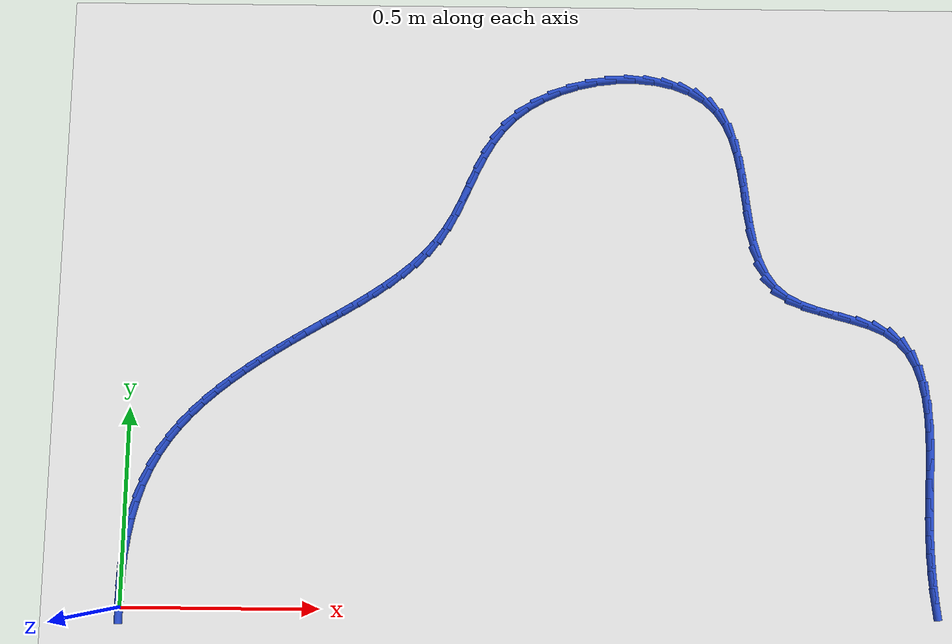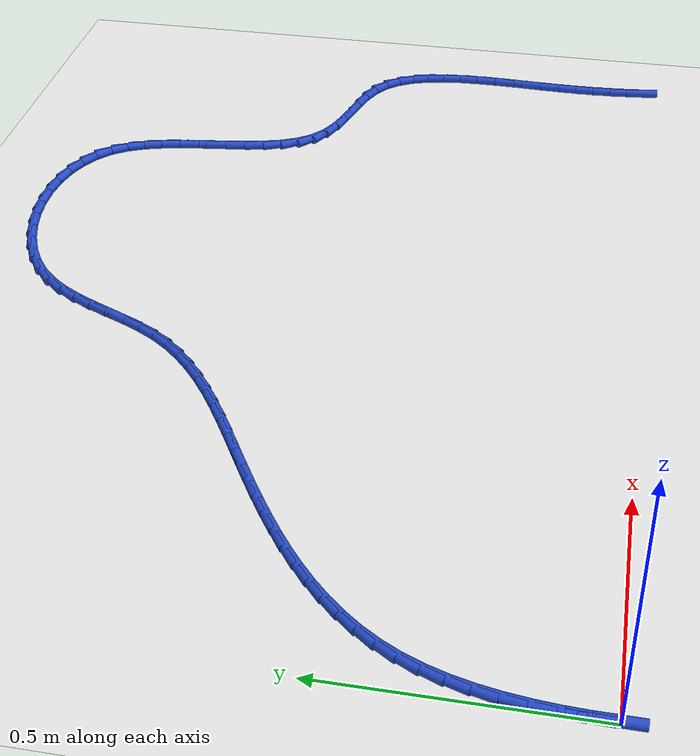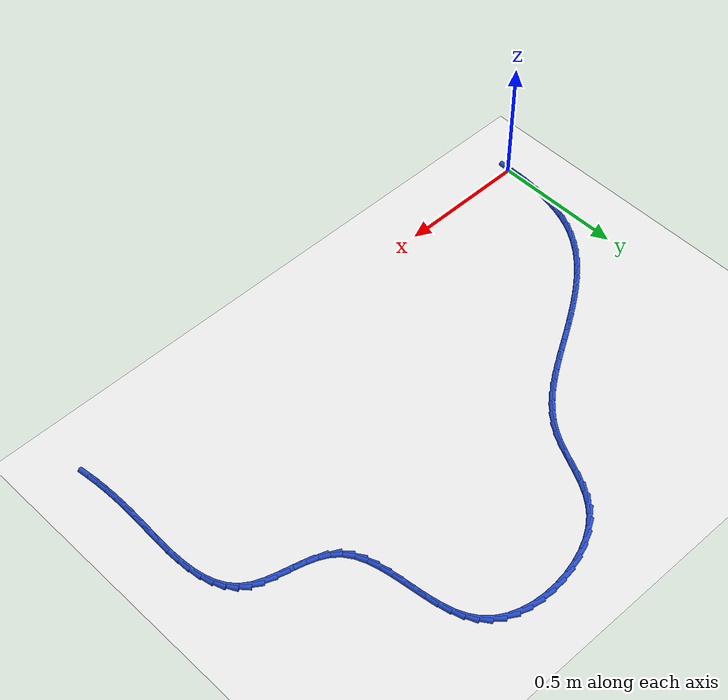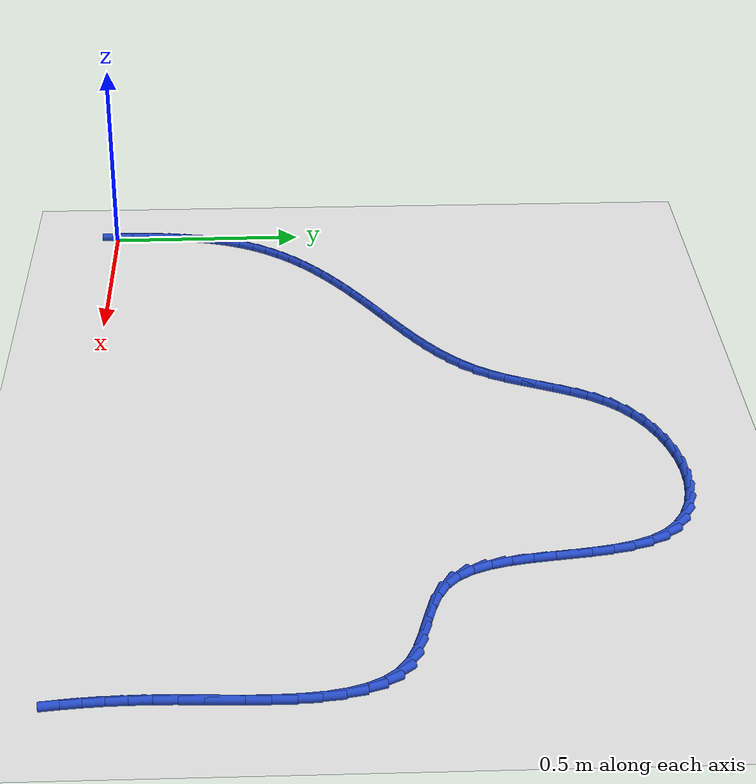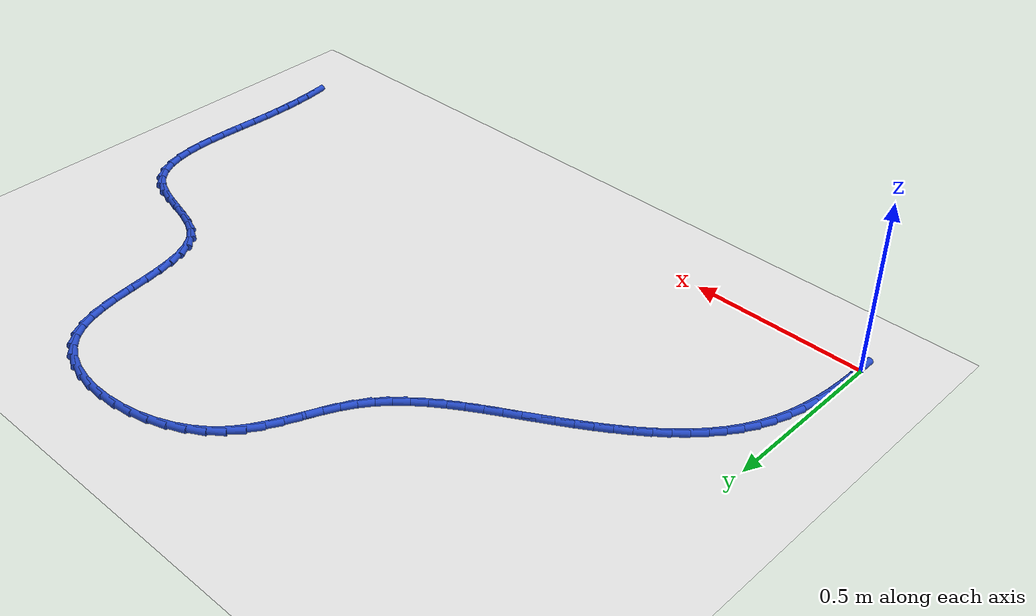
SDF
<sdf version="1.6">
 <world name="default">
  <model name="ground_plane">
   <static>1</static>
   <link name="link">
    <collision name="collision">
     <geometry><plane><normal>0 0 1</normal><size>100 100</size></plane></geometry>
     <surface><friction><ode><mu>100</mu><mu2>50</mu2></ode></friction></surface>
    </collision>
    <visual name="visual">
     <cast_shadows>0</cast_shadows>
     <geometry><plane><normal>0 0 1</normal><size>100 100</size></plane></geometry>
     <material>
      <script><uri>file://media/materials/scripts/gazebo.material</uri><name>Gazebo/WhiteGlow</name></script>
     </material>
    </visual>
   </link>
  </model>
  <model name="line">
   <link name="link_0">
    <pose>-9.540979117872439e-18 -9.71445146547012e-17 0.01 0 1.57 1.5653030758352668</pose>
    <collision name="collision">
     <geometry><cylinder><radius>0.01</radius><length>0.08</length></cylinder></geometry>
    </collision>
    <visual name="visual">
     <material>
      <script><name>Gazebo/Blue</name><uri>file://media/materials/scripts/gazebo.material</uri></script>
     </material>
     <geometry><cylinder><radius>0.01</radius><length>0.08</length></cylinder></geometry>
    </visual>
   </link>
   <link name="link_1">
    <pose>0.00025050211197734276 0.04560133773464336 0.01 0 1.57 1.5297810279426987</pose>
    <collision name="collision">
     <geometry><cylinder><radius>0.01</radius><length>0.08</length></cylinder></geometry>
    </collision>
    <visual name="visual">
     <material>
      <script><name>Gazebo/Blue</name><uri>file://media/materials/scripts/gazebo.material</uri></script>
     </material>
     <geometry><cylinder><radius>0.01</radius><length>0.08</length></cylinder></geometry>
    </visual>
   </link>
   <link name="link_2">
    <pose>0.002117362007868992 0.0910919957585255 0.01 0 1.57 1.488524370906503</pose>
    <collision name="collision">
     <geometry><cylinder><radius>0.01</radius><length>0.08</length></cylinder></geometry>
    </collision>
    <visual name="visual">
     <material>
      <script><name>Gazebo/Blue</name><uri>file://media/materials/scripts/gazebo.material</uri></script>
     </material>
     <geometry><cylinder><radius>0.01</radius><length>0.08</length></cylinder></geometry>
    </visual>
   </link>
   <link name="link_3">
    <pose>0.005837761680537417 0.13621067300344877 0.01 0 1.57 1.4409019700494763</pose>
    <collision name="collision">
     <geometry><cylinder><radius>0.01</radius><length>0.08</length></cylinder></geometry>
    </collision>
    <visual name="visual">
     <material>
      <script><name>Gazebo/Blue</name><uri>file://media/materials/scripts/gazebo.material</uri></script>
     </material>
     <geometry><cylinder><radius>0.01</radius><length>0.08</length></cylinder></geometry>
    </visual>
   </link>
   <link name="link_4">
    <pose>0.011648883122845082 0.18069606840121544 0.01 0 1.57 1.3862075633671531</pose>
    <collision name="collision">
     <geometry><cylinder><radius>0.01</radius><length>0.08</length></cylinder></geometry>
    </collision>
    <visual name="visual">
     <material>
      <script><name>Gazebo/Blue</name><uri>file://media/materials/scripts/gazebo.material</uri></script>
     </material>
     <geometry><cylinder><radius>0.01</radius><length>0.08</length></cylinder></geometry>
    </visual>
   </link>
   <link name="link_5">
    <pose>0.019787908327654473 0.22428688088362814 0.01 0 1.57 1.3237033503994662</pose>
    <collision name="collision">
     <geometry><cylinder><radius>0.01</radius><length>0.08</length></cylinder></geometry>
    </collision>
    <visual name="visual">
     <material>
      <script><name>Gazebo/Blue</name><uri>file://media/materials/scripts/gazebo.material</uri></script>
     </material>
     <geometry><cylinder><radius>0.01</radius><length>0.08</length></cylinder></geometry>
    </visual>
   </link>
   <link name="link_6">
    <pose>0.03049201928782805 0.26672180938248913 0.01 0 1.57 1.252696962597922</pose>
    <collision name="collision">
     <geometry><cylinder><radius>0.01</radius><length>0.08</length></cylinder></geometry>
    </collision>
    <visual name="visual">
     <material>
      <script><name>Gazebo/Blue</name><uri>file://media/materials/scripts/gazebo.material</uri></script>
     </material>
     <geometry><cylinder><radius>0.01</radius><length>0.08</length></cylinder></geometry>
    </visual>
   </link>
   <link name="link_7">
    <pose>0.043998397996228275 0.3077395528296009 0.01 0 1.57 1.1726640984225434</pose>
    <collision name="collision">
     <geometry><cylinder><radius>0.01</radius><length>0.08</length></cylinder></geometry>
    </collision>
    <visual name="visual">
     <material>
      <script><name>Gazebo/Blue</name><uri>file://media/materials/scripts/gazebo.material</uri></script>
     </material>
     <geometry><cylinder><radius>0.01</radius><length>0.08</length></cylinder></geometry>
    </visual>
   </link>
   <link name="link_8">
    <pose>0.060544226445717664 0.347078810156766 0.01 0 1.57 1.0840473184928858</pose>
    <collision name="collision">
     <geometry><cylinder><radius>0.01</radius><length>0.08</length></cylinder></geometry>
    </collision>
    <visual name="visual">
     <material>
      <script><name>Gazebo/Blue</name><uri>file://media/materials/scripts/gazebo.material</uri></script>
     </material>
     <geometry><cylinder><radius>0.01</radius><length>0.08</length></cylinder></geometry>
    </visual>
   </link>
   <link name="link_9">
    <pose>0.0803456091846087 0.38449501368439337 0.01 0 1.57 0.9957664719455297</pose>
    <collision name="collision">
     <geometry><cylinder><radius>0.01</radius><length>0.08</length></cylinder></geometry>
    </collision>
    <visual name="visual">
     <material>
      <script><name>Gazebo/Blue</name><uri>file://media/materials/scripts/gazebo.material</uri></script>
     </material>
     <geometry><cylinder><radius>0.01</radius><length>0.08</length></cylinder></geometry>
    </visual>
   </link>
   <link name="link_10">
    <pose>0.10333548296893096 0.4199684027154446 0.01 0 1.57 0.9149621484737105</pose>
    <collision name="collision">
     <geometry><cylinder><radius>0.01</radius><length>0.08</length></cylinder></geometry>
    </collision>
    <visual name="visual">
     <material>
      <script><name>Gazebo/Blue</name><uri>file://media/materials/scripts/gazebo.material</uri></script>
     </material>
     <geometry><cylinder><radius>0.01</radius><length>0.08</length></cylinder></geometry>
    </visual>
   </link>
   <link name="link_11">
    <pose>0.1292441848096846 0.4536400605421592 0.01 0 1.57 0.842478964433634</pose>
    <collision name="collision">
     <geometry><cylinder><radius>0.01</radius><length>0.08</length></cylinder></geometry>
    </collision>
    <visual name="visual">
     <material>
      <script><name>Gazebo/Blue</name><uri>file://media/materials/scripts/gazebo.material</uri></script>
     </material>
     <geometry><cylinder><radius>0.01</radius><length>0.08</length></cylinder></geometry>
    </visual>
   </link>
   <link name="link_12">
    <pose>0.15779765624762143 0.48565456002172885 0.01 0 1.57 0.7785238549478946</pose>
    <collision name="collision">
     <geometry><cylinder><radius>0.01</radius><length>0.08</length></cylinder></geometry>
    </collision>
    <visual name="visual">
     <material>
      <script><name>Gazebo/Blue</name><uri>file://media/materials/scripts/gazebo.material</uri></script>
     </material>
     <geometry><cylinder><radius>0.01</radius><length>0.08</length></cylinder></geometry>
    </visual>
   </link>
   <link name="link_13">
    <pose>0.18872183882349308 0.5161564740113451 0.01 0 1.57 0.7229430882734792</pose>
    <collision name="collision">
     <geometry><cylinder><radius>0.01</radius><length>0.08</length></cylinder></geometry>
    </collision>
    <visual name="visual">
     <material>
      <script><name>Gazebo/Blue</name><uri>file://media/materials/scripts/gazebo.material</uri></script>
     </material>
     <geometry><cylinder><radius>0.01</radius><length>0.08</length></cylinder></geometry>
    </visual>
   </link>
   <link name="link_14">
    <pose>0.22174267407805115 0.5452903753681995 0.01 0 1.57 0.6753656907574038</pose>
    <collision name="collision">
     <geometry><cylinder><radius>0.01</radius><length>0.08</length></cylinder></geometry>
    </collision>
    <visual name="visual">
     <material>
      <script><name>Gazebo/Blue</name><uri>file://media/materials/scripts/gazebo.material</uri></script>
     </material>
     <geometry><cylinder><radius>0.01</radius><length>0.08</length></cylinder></geometry>
    </visual>
   </link>
   <link name="link_15">
    <pose>0.25658610355204736 0.5732008369494833 0.01 0 1.57 0.6353198553763588</pose>
    <collision name="collision">
     <geometry><cylinder><radius>0.01</radius><length>0.08</length></cylinder></geometry>
    </collision>
    <visual name="visual">
     <material>
      <script><name>Gazebo/Blue</name><uri>file://media/materials/scripts/gazebo.material</uri></script>
     </material>
     <geometry><cylinder><radius>0.01</radius><length>0.08</length></cylinder></geometry>
    </visual>
   </link>
   <link name="link_16">
    <pose>0.2929780687862335 0.6000324316123885 0.01 0 1.57 0.6023165751661791</pose>
    <collision name="collision">
     <geometry><cylinder><radius>0.01</radius><length>0.08</length></cylinder></geometry>
    </collision>
    <visual name="visual">
     <material>
      <script><name>Gazebo/Blue</name><uri>file://media/materials/scripts/gazebo.material</uri></script>
     </material>
     <geometry><cylinder><radius>0.01</radius><length>0.08</length></cylinder></geometry>
    </visual>
   </link>
   <link name="link_17">
    <pose>0.3306445113213612 0.6259297322141066 0.01 0 1.57 0.5759045530681607</pose>
    <collision name="collision">
     <geometry><cylinder><radius>0.01</radius><length>0.08</length></cylinder></geometry>
    </collision>
    <visual name="visual">
     <material>
      <script><name>Gazebo/Blue</name><uri>file://media/materials/scripts/gazebo.material</uri></script>
     </material>
     <geometry><cylinder><radius>0.01</radius><length>0.08</length></cylinder></geometry>
    </visual>
   </link>
   <link name="link_18">
    <pose>0.36931137269818193 0.651037311611829 0.01 0 1.57 0.5557038212532415</pose>
    <collision name="collision">
     <geometry><cylinder><radius>0.01</radius><length>0.08</length></cylinder></geometry>
    </collision>
    <visual name="visual">
     <material>
      <script><name>Gazebo/Blue</name><uri>file://media/materials/scripts/gazebo.material</uri></script>
     </material>
     <geometry><cylinder><radius>0.01</radius><length>0.08</length></cylinder></geometry>
    </visual>
   </link>
   <link name="link_19">
    <pose>0.4087045944574477 0.6754997426627473 0.01 0 1.57 0.5414253778234269</pose>
    <collision name="collision">
     <geometry><cylinder><radius>0.01</radius><length>0.08</length></cylinder></geometry>
    </collision>
    <visual name="visual">
     <material>
      <script><name>Gazebo/Blue</name><uri>file://media/materials/scripts/gazebo.material</uri></script>
     </material>
     <geometry><cylinder><radius>0.01</radius><length>0.08</length></cylinder></geometry>
    </visual>
   </link>
   <link name="link_20">
    <pose>0.4485501181399101 0.6994615982240531 0.01 0 1.57 0.5329689783708867</pose>
    <collision name="collision">
     <geometry><cylinder><radius>0.01</radius><length>0.08</length></cylinder></geometry>
    </collision>
    <visual name="visual">
     <material>
      <script><name>Gazebo/Blue</name><uri>file://media/materials/scripts/gazebo.material</uri></script>
     </material>
     <geometry><cylinder><radius>0.01</radius><length>0.08</length></cylinder></geometry>
    </visual>
   </link>
   <link name="link_21">
    <pose>0.4885719016272206 0.7230709365363737 0.01 0 1.57 0.5323891850747435</pose>
    <collision name="collision">
     <geometry><cylinder><radius>0.01</radius><length>0.08</length></cylinder></geometry>
    </collision>
    <visual name="visual">
     <material>
      <script><name>Gazebo/Blue</name><uri>file://media/materials/scripts/gazebo.material</uri></script>
     </material>
     <geometry><cylinder><radius>0.01</radius><length>0.08</length></cylinder></geometry>
    </visual>
   </link>
   <link name="link_22">
    <pose>0.5284451403309848 0.7465614938206808 0.01 0 1.57 0.5420022314829092</pose>
    <collision name="collision">
     <geometry><cylinder><radius>0.01</radius><length>0.08</length></cylinder></geometry>
    </collision>
    <visual name="visual">
     <material>
      <script><name>Gazebo/Blue</name><uri>file://media/materials/scripts/gazebo.material</uri></script>
     </material>
     <geometry><cylinder><radius>0.01</radius><length>0.08</length></cylinder></geometry>
    </visual>
   </link>
   <link name="link_23">
    <pose>0.5677944572105186 0.7702558645032243 0.01 0 1.57 0.5622401183788936</pose>
    <collision name="collision">
     <geometry><cylinder><radius>0.01</radius><length>0.08</length></cylinder></geometry>
    </collision>
    <visual name="visual">
     <material>
      <script><name>Gazebo/Blue</name><uri>file://media/materials/scripts/gazebo.material</uri></script>
     </material>
     <geometry><cylinder><radius>0.01</radius><length>0.08</length></cylinder></geometry>
    </visual>
   </link>
   <link name="link_24">
    <pose>0.6062421294188469 0.7944807647035385 0.01 0 1.57 0.5936302586315509</pose>
    <collision name="collision">
     <geometry><cylinder><radius>0.01</radius><length>0.08</length></cylinder></geometry>
    </collision>
    <visual name="visual">
     <material>
      <script><name>Gazebo/Blue</name><uri>file://media/materials/scripts/gazebo.material</uri></script>
     </material>
     <geometry><cylinder><radius>0.01</radius><length>0.08</length></cylinder></geometry>
    </visual>
   </link>
   <link name="link_25">
    <pose>0.6434104341089945 0.8195629105411578 0.01 0 1.57 0.6368484654022575</pose>
    <collision name="collision">
     <geometry><cylinder><radius>0.01</radius><length>0.08</length></cylinder></geometry>
    </collision>
    <visual name="visual">
     <material>
      <script><name>Gazebo/Blue</name><uri>file://media/materials/scripts/gazebo.material</uri></script>
     </material>
     <geometry><cylinder><radius>0.01</radius><length>0.08</length></cylinder></geometry>
    </visual>
   </link>
   <link name="link_26">
    <pose>0.6789216484339855 0.8458290181356166 0.01 0 1.57 0.6926152212125446</pose>
    <collision name="collision">
     <geometry><cylinder><radius>0.01</radius><length>0.08</length></cylinder></geometry>
    </collision>
    <visual name="visual">
     <material>
      <script><name>Gazebo/Blue</name><uri>file://media/materials/scripts/gazebo.material</uri></script>
     </material>
     <geometry><cylinder><radius>0.01</radius><length>0.08</length></cylinder></geometry>
    </visual>
   </link>
   <link name="link_27">
    <pose>0.7123980495468446 0.8736058036064485 0.01 0 1.57 0.7615112720891524</pose>
    <collision name="collision">
     <geometry><cylinder><radius>0.01</radius><length>0.08</length></cylinder></geometry>
    </collision>
    <visual name="visual">
     <material>
      <script><name>Gazebo/Blue</name><uri>file://media/materials/scripts/gazebo.material</uri></script>
     </material>
     <geometry><cylinder><radius>0.01</radius><length>0.08</length></cylinder></geometry>
    </visual>
   </link>
   <link name="link_28">
    <pose>0.7434619146005969 0.9032199830731887 0.01 0 1.57 0.8436929520012761</pose>
    <collision name="collision">
     <geometry><cylinder><radius>0.01</radius><length>0.08</length></cylinder></geometry>
    </collision>
    <visual name="visual">
     <material>
      <script><name>Gazebo/Blue</name><uri>file://media/materials/scripts/gazebo.material</uri></script>
     </material>
     <geometry><cylinder><radius>0.01</radius><length>0.08</length></cylinder></geometry>
    </visual>
   </link>
   <link name="link_29">
    <pose>0.7717355207482667 0.9349982726553712 0.01 0 1.57 0.9385232051621704</pose>
    <collision name="collision">
     <geometry><cylinder><radius>0.01</radius><length>0.08</length></cylinder></geometry>
    </collision>
    <visual name="visual">
     <material>
      <script><name>Gazebo/Blue</name><uri>file://media/materials/scripts/gazebo.material</uri></script>
     </material>
     <geometry><cylinder><radius>0.01</radius><length>0.08</length></cylinder></geometry>
    </visual>
   </link>
   <link name="link_30">
    <pose>0.796841145142879 0.9692673884725302 0.01 0 1.57 1.0390859069789522</pose>
    <collision name="collision">
     <geometry><cylinder><radius>0.01</radius><length>0.08</length></cylinder></geometry>
    </collision>
    <visual name="visual">
     <material>
      <script><name>Gazebo/Blue</name><uri>file://media/materials/scripts/gazebo.material</uri></script>
     </material>
     <geometry><cylinder><radius>0.01</radius><length>0.08</length></cylinder></geometry>
    </visual>
   </link>
   <link name="link_31">
    <pose>0.8185788586474677 1.0062226554808555 0.01 0 1.57 1.1127757626558452</pose>
    <collision name="collision">
     <geometry><cylinder><radius>0.01</radius><length>0.08</length></cylinder></geometry>
    </collision>
    <visual name="visual">
     <material>
      <script><name>Gazebo/Blue</name><uri>file://media/materials/scripts/gazebo.material</uri></script>
     </material>
     <geometry><cylinder><radius>0.01</radius><length>0.08</length></cylinder></geometry>
    </visual>
   </link>
   <link name="link_32">
    <pose>0.8378255149094231 1.0452636463981777 0.01 0 1.57 1.149328500024085</pose>
    <collision name="collision">
     <geometry><cylinder><radius>0.01</radius><length>0.08</length></cylinder></geometry>
    </collision>
    <visual name="visual">
     <material>
      <script><name>Gazebo/Blue</name><uri>file://media/materials/scripts/gazebo.material</uri></script>
     </material>
     <geometry><cylinder><radius>0.01</radius><length>0.08</length></cylinder></geometry>
    </visual>
   </link>
   <link name="link_33">
    <pose>0.8558612282223872 1.085491920669309 0.01 0 1.57 1.1505495541237387</pose>
    <collision name="collision">
     <geometry><cylinder><radius>0.01</radius><length>0.08</length></cylinder></geometry>
    </collision>
    <visual name="visual">
     <material>
      <script><name>Gazebo/Blue</name><uri>file://media/materials/scripts/gazebo.material</uri></script>
     </material>
     <geometry><cylinder><radius>0.01</radius><length>0.08</length></cylinder></geometry>
    </visual>
   </link>
   <link name="link_34">
    <pose>0.8739668204923616 1.1260085148071128 0.01 0 1.57 1.1171552571898333</pose>
    <collision name="collision">
     <geometry><cylinder><radius>0.01</radius><length>0.08</length></cylinder></geometry>
    </collision>
    <visual name="visual">
     <material>
      <script><name>Gazebo/Blue</name><uri>file://media/materials/scripts/gazebo.material</uri></script>
     </material>
     <geometry><cylinder><radius>0.01</radius><length>0.08</length></cylinder></geometry>
    </visual>
   </link>
   <link name="link_35">
    <pose>0.893423113625348 1.1659144653244524 0.01 0 1.57 1.0487679363123783</pose>
    <collision name="collision">
     <geometry><cylinder><radius>0.01</radius><length>0.08</length></cylinder></geometry>
    </collision>
    <visual name="visual">
     <material>
      <script><name>Gazebo/Blue</name><uri>file://media/materials/scripts/gazebo.material</uri></script>
     </material>
     <geometry><cylinder><radius>0.01</radius><length>0.08</length></cylinder></geometry>
    </visual>
   </link>
   <link name="link_36">
    <pose>0.915510929527348 1.2043108087341912 0.01 0 1.57 0.9451471084817058</pose>
    <collision name="collision">
     <geometry><cylinder><radius>0.01</radius><length>0.08</length></cylinder></geometry>
    </collision>
    <visual name="visual">
     <material>
      <script><name>Gazebo/Blue</name><uri>file://media/materials/scripts/gazebo.material</uri></script>
     </material>
     <geometry><cylinder><radius>0.01</radius><length>0.08</length></cylinder></geometry>
    </visual>
   </link>
   <link name="link_37">
    <pose>0.9415110901043641 1.2402985815491934 0.01 0 1.57 0.8087013914473506</pose>
    <collision name="collision">
     <geometry><cylinder><radius>0.01</radius><length>0.08</length></cylinder></geometry>
    </collision>
    <visual name="visual">
     <material>
      <script><name>Gazebo/Blue</name><uri>file://media/materials/scripts/gazebo.material</uri></script>
     </material>
     <geometry><cylinder><radius>0.01</radius><length>0.08</length></cylinder></geometry>
    </visual>
   </link>
   <link name="link_38">
    <pose>0.9727030356850674 1.272979234341757 0.01 0 1.57 0.6582202324102502</pose>
    <collision name="collision">
     <geometry><cylinder><radius>0.01</radius><length>0.08</length></cylinder></geometry>
    </collision>
    <visual name="visual">
     <material>
      <script><name>Gazebo/Blue</name><uri>file://media/materials/scripts/gazebo.material</uri></script>
     </material>
     <geometry><cylinder><radius>0.01</radius><length>0.08</length></cylinder></geometry>
    </visual>
   </link>
   <link name="link_39">
    <pose>1.009761961641977 1.3016353102078462 0.01 0 1.57 0.5253563533869497</pose>
    <collision name="collision">
     <geometry><cylinder><radius>0.01</radius><length>0.08</length></cylinder></geometry>
    </collision>
    <visual name="visual">
     <material>
      <script><name>Gazebo/Blue</name><uri>file://media/materials/scripts/gazebo.material</uri></script>
     </material>
     <geometry><cylinder><radius>0.01</radius><length>0.08</length></cylinder></geometry>
    </visual>
   </link>
   <link name="link_40">
    <pose>1.0518150176792507 1.326013302325221 0.01 0 1.57 0.40921367634495115</pose>
    <collision name="collision">
     <geometry><cylinder><radius>0.01</radius><length>0.08</length></cylinder></geometry>
    </collision>
    <visual name="visual">
     <material>
      <script><name>Gazebo/Blue</name><uri>file://media/materials/scripts/gazebo.material</uri></script>
     </material>
     <geometry><cylinder><radius>0.01</radius><length>0.08</length></cylinder></geometry>
    </visual>
   </link>
   <link name="link_41">
    <pose>1.097744937931272 1.3459329553434192 0.01 0 1.57 0.30411154297586623</pose>
    <collision name="collision">
     <geometry><cylinder><radius>0.01</radius><length>0.08</length></cylinder></geometry>
    </collision>
    <visual name="visual">
     <material>
      <script><name>Gazebo/Blue</name><uri>file://media/materials/scripts/gazebo.material</uri></script>
     </material>
     <geometry><cylinder><radius>0.01</radius><length>0.08</length></cylinder></geometry>
    </visual>
   </link>
   <link name="link_42">
    <pose>1.1464344565324258 1.3612140139119795 0.01 0 1.57 0.20494608667161407</pose>
    <collision name="collision">
     <geometry><cylinder><radius>0.01</radius><length>0.08</length></cylinder></geometry>
    </collision>
    <visual name="visual">
     <material>
      <script><name>Gazebo/Blue</name><uri>file://media/materials/scripts/gazebo.material</uri></script>
     </material>
     <geometry><cylinder><radius>0.01</radius><length>0.08</length></cylinder></geometry>
    </visual>
   </link>
   <link name="link_43">
    <pose>1.1967663076170973 1.3716762226804409 0.01 0 1.57 0.10701070240283597</pose>
    <collision name="collision">
     <geometry><cylinder><radius>0.01</radius><length>0.08</length></cylinder></geometry>
    </collision>
    <visual name="visual">
     <material>
      <script><name>Gazebo/Blue</name><uri>file://media/materials/scripts/gazebo.material</uri></script>
     </material>
     <geometry><cylinder><radius>0.01</radius><length>0.08</length></cylinder></geometry>
    </visual>
   </link>
   <link name="link_44">
    <pose>1.2476232253196702 1.3771393262983418 0.01 0 1.57 0.005644915793065453</pose>
    <collision name="collision">
     <geometry><cylinder><radius>0.01</radius><length>0.08</length></cylinder></geometry>
    </collision>
    <visual name="visual">
     <material>
      <script><name>Gazebo/Blue</name><uri>file://media/materials/scripts/gazebo.material</uri></script>
     </material>
     <geometry><cylinder><radius>0.01</radius><length>0.08</length></cylinder></geometry>
    </visual>
   </link>
   <link name="link_45">
    <pose>1.2978879437745303 1.3774230694152199 0.01 0 1.57 -0.10415974832302113</pose>
    <collision name="collision">
     <geometry><cylinder><radius>0.01</radius><length>0.08</length></cylinder></geometry>
    </collision>
    <visual name="visual">
     <material>
      <script><name>Gazebo/Blue</name><uri>file://media/materials/scripts/gazebo.material</uri></script>
     </material>
     <geometry><cylinder><radius>0.01</radius><length>0.08</length></cylinder></geometry>
    </visual>
   </link>
   <link name="link_46">
    <pose>1.346443197116061 1.372347196680615 0.01 0 1.57 -0.22810665589423143</pose>
    <collision name="collision">
     <geometry><cylinder><radius>0.01</radius><length>0.08</length></cylinder></geometry>
    </collision>
    <visual name="visual">
     <material>
      <script><name>Gazebo/Blue</name><uri>file://media/materials/scripts/gazebo.material</uri></script>
     </material>
     <geometry><cylinder><radius>0.01</radius><length>0.08</length></cylinder></geometry>
    </visual>
   </link>
   <link name="link_47">
    <pose>1.3921717194786483 1.3617314527440645 0.01 0 1.57 -0.3726847541728337</pose>
    <collision name="collision">
     <geometry><cylinder><radius>0.01</radius><length>0.08</length></cylinder></geometry>
    </collision>
    <visual name="visual">
     <material>
      <script><name>Gazebo/Blue</name><uri>file://media/materials/scripts/gazebo.material</uri></script>
     </material>
     <geometry><cylinder><radius>0.01</radius><length>0.08</length></cylinder></geometry>
    </visual>
   </link>
   <link name="link_48">
    <pose>1.433956244996675 1.3453955822551076 0.01 0 1.57 -0.5444601184396616</pose>
    <collision name="collision">
     <geometry><cylinder><radius>0.01</radius><length>0.08</length></cylinder></geometry>
    </collision>
    <visual name="visual">
     <material>
      <script><name>Gazebo/Blue</name><uri>file://media/materials/scripts/gazebo.material</uri></script>
     </material>
     <geometry><cylinder><radius>0.01</radius><length>0.08</length></cylinder></geometry>
    </visual>
   </link>
   <link name="link_49">
    <pose>1.4706795078045267 1.3231593298632822 0.01 0 1.57 -0.747567374307094</pose>
    <collision name="collision">
     <geometry><cylinder><radius>0.01</radius><length>0.08</length></cylinder></geometry>
    </collision>
    <visual name="visual">
     <material>
      <script><name>Gazebo/Blue</name><uri>file://media/materials/scripts/gazebo.material</uri></script>
     </material>
     <geometry><cylinder><radius>0.01</radius><length>0.08</length></cylinder></geometry>
    </visual>
   </link>
   <link name="link_50">
    <pose>1.5012242420365887 1.2948424402181278 0.01 0 1.57 -0.9692586021782646</pose>
    <collision name="collision">
     <geometry><cylinder><radius>0.01</radius><length>0.08</length></cylinder></geometry>
    </collision>
    <visual name="visual">
     <material>
      <script><name>Gazebo/Blue</name><uri>file://media/materials/scripts/gazebo.material</uri></script>
     </material>
     <geometry><cylinder><radius>0.01</radius><length>0.08</length></cylinder></geometry>
    </visual>
   </link>
   <link name="link_51">
    <pose>1.5248244346616455 1.2604597065780323 0.01 0 1.57 -1.1536797629218414</pose>
    <collision name="collision">
     <geometry><cylinder><radius>0.01</radius><length>0.08</length></cylinder></geometry>
    </collision>
    <visual name="visual">
     <material>
      <script><name>Gazebo/Blue</name><uri>file://media/materials/scripts/gazebo.material</uri></script>
     </material>
     <geometry><cylinder><radius>0.01</radius><length>0.08</length></cylinder></geometry>
    </visual>
   </link>
   <link name="link_52">
    <pose>1.5423410558418746 1.2209293762874835 0.01 0 1.57 -1.2853555912811894</pose>
    <collision name="collision">
     <geometry><cylinder><radius>0.01</radius><length>0.08</length></cylinder></geometry>
    </collision>
    <visual name="visual">
     <material>
      <script><name>Gazebo/Blue</name><uri>file://media/materials/scripts/gazebo.material</uri></script>
     </material>
     <geometry><cylinder><radius>0.01</radius><length>0.08</length></cylinder></geometry>
    </visual>
   </link>
   <link name="link_53">
    <pose>1.5551058110404197 1.1774310932025356 0.01 0 1.57 -1.371587288108067</pose>
    <collision name="collision">
     <geometry><cylinder><radius>0.01</radius><length>0.08</length></cylinder></geometry>
    </collision>
    <visual name="visual">
     <material>
      <script><name>Gazebo/Blue</name><uri>file://media/materials/scripts/gazebo.material</uri></script>
     </material>
     <geometry><cylinder><radius>0.01</radius><length>0.08</length></cylinder></geometry>
    </visual>
   </link>
   <link name="link_54">
    <pose>1.5644504532334635 1.1311445275629504 0.01 0 1.57 -1.4204363894564953</pose>
    <collision name="collision">
     <geometry><cylinder><radius>0.01</radius><length>0.08</length></cylinder></geometry>
    </collision>
    <visual name="visual">
     <material>
      <script><name>Gazebo/Blue</name><uri>file://media/materials/scripts/gazebo.material</uri></script>
     </material>
     <geometry><cylinder><radius>0.01</radius><length>0.08</length></cylinder></geometry>
    </visual>
   </link>
   <link name="link_55">
    <pose>1.571706735397192 1.0832493496084903 0.01 0 1.57 -1.4370970362415991</pose>
    <collision name="collision">
     <geometry><cylinder><radius>0.01</radius><length>0.08</length></cylinder></geometry>
    </collision>
    <visual name="visual">
     <material>
      <script><name>Gazebo/Blue</name><uri>file://media/materials/scripts/gazebo.material</uri></script>
     </material>
     <geometry><cylinder><radius>0.01</radius><length>0.08</length></cylinder></geometry>
    </visual>
   </link>
   <link name="link_56">
    <pose>1.5782064105077882 1.0349252295789189 0.01 0 1.57 -1.4231644895617552</pose>
    <collision name="collision">
     <geometry><cylinder><radius>0.01</radius><length>0.08</length></cylinder></geometry>
    </collision>
    <visual name="visual">
     <material>
      <script><name>Gazebo/Blue</name><uri>file://media/materials/scripts/gazebo.material</uri></script>
     </material>
     <geometry><cylinder><radius>0.01</radius><length>0.08</length></cylinder></geometry>
    </visual>
   </link>
   <link name="link_57">
    <pose>1.5852812315414362 0.9873518377139976 0.01 0 1.57 -1.37649689555462</pose>
    <collision name="collision">
     <geometry><cylinder><radius>0.01</radius><length>0.08</length></cylinder></geometry>
    </collision>
    <visual name="visual">
     <material>
      <script><name>Gazebo/Blue</name><uri>file://media/materials/scripts/gazebo.material</uri></script>
     </material>
     <geometry><cylinder><radius>0.01</radius><length>0.08</length></cylinder></geometry>
    </visual>
   </link>
   <link name="link_58">
    <pose>1.5942629514743198 0.9417088442534889 0.01 0 1.57 -1.2910168562740298</pose>
    <collision name="collision">
     <geometry><cylinder><radius>0.01</radius><length>0.08</length></cylinder></geometry>
    </collision>
    <visual name="visual">
     <material>
      <script><name>Gazebo/Blue</name><uri>file://media/materials/scripts/gazebo.material</uri></script>
     </material>
     <geometry><cylinder><radius>0.01</radius><length>0.08</length></cylinder></geometry>
    </visual>
   </link>
   <link name="link_59">
    <pose>1.606483323282623 0.8991759194371558 0.01 0 1.57 -1.1570833213207852</pose>
    <collision name="collision">
     <geometry><cylinder><radius>0.01</radius><length>0.08</length></cylinder></geometry>
    </collision>
    <visual name="visual">
     <material>
      <script><name>Gazebo/Blue</name><uri>file://media/materials/scripts/gazebo.material</uri></script>
     </material>
     <geometry><cylinder><radius>0.01</radius><length>0.08</length></cylinder></geometry>
    </visual>
   </link>
   <link name="link_60">
    <pose>1.6232740999425301 0.8609327335047606 0.01 0 1.57 -0.9651816054771756</pose>
    <collision name="collision">
     <geometry><cylinder><radius>0.01</radius><length>0.08</length></cylinder></geometry>
    </collision>
    <visual name="visual">
     <material>
      <script><name>Gazebo/Blue</name><uri>file://media/materials/scripts/gazebo.material</uri></script>
     </material>
     <geometry><cylinder><radius>0.01</radius><length>0.08</length></cylinder></geometry>
    </visual>
   </link>
   <link name="link_61">
    <pose>1.6459670344302255 0.8281589566960654 0.01 0 1.57 -0.718427338330417</pose>
    <collision name="collision">
     <geometry><cylinder><radius>0.01</radius><length>0.08</length></cylinder></geometry>
    </collision>
    <visual name="visual">
     <material>
      <script><name>Gazebo/Blue</name><uri>file://media/materials/scripts/gazebo.material</uri></script>
     </material>
     <geometry><cylinder><radius>0.01</radius><length>0.08</length></cylinder></geometry>
    </visual>
   </link>
   <link name="link_62">
    <pose>1.675871255263682 0.802014016351121 0.01 0 1.57 -0.4854694153423226</pose>
    <collision name="collision">
     <geometry><cylinder><radius>0.01</radius><length>0.08</length></cylinder></geometry>
    </collision>
    <visual name="visual">
     <material>
      <script><name>Gazebo/Blue</name><uri>file://media/materials/scripts/gazebo.material</uri></script>
     </material>
     <geometry><cylinder><radius>0.01</radius><length>0.08</length></cylinder></geometry>
    </visual>
   </link>
   <link name="link_63">
    <pose>1.7129491510441903 0.7824523641673301 0.01 0 1.57 -0.33962554845911647</pose>
    <collision name="collision">
     <geometry><cylinder><radius>0.01</radius><length>0.08</length></cylinder></geometry>
    </collision>
    <visual name="visual">
     <material>
      <script><name>Gazebo/Blue</name><uri>file://media/materials/scripts/gazebo.material</uri></script>
     </material>
     <geometry><cylinder><radius>0.01</radius><length>0.08</length></cylinder></geometry>
    </visual>
   </link>
   <link name="link_64">
    <pose>1.75508180860347 0.7675662378345782 0.01 0 1.57 -0.26698039380904803</pose>
    <collision name="collision">
     <geometry><cylinder><radius>0.01</radius><length>0.08</length></cylinder></geometry>
    </collision>
    <visual name="visual">
     <material>
      <script><name>Gazebo/Blue</name><uri>file://media/materials/scripts/gazebo.material</uri></script>
     </material>
     <geometry><cylinder><radius>0.01</radius><length>0.08</length></cylinder></geometry>
    </visual>
   </link>
   <link name="link_65">
    <pose>1.7999719943619998 0.755288325489439 0.01 0 1.57 -0.2532500357515321</pose>
    <collision name="collision">
     <geometry><cylinder><radius>0.01</radius><length>0.08</length></cylinder></geometry>
    </collision>
    <visual name="visual">
     <material>
      <script><name>Gazebo/Blue</name><uri>file://media/materials/scripts/gazebo.material</uri></script>
     </material>
     <geometry><cylinder><radius>0.01</radius><length>0.08</length></cylinder></geometry>
    </visual>
   </link>
   <link name="link_66">
    <pose>1.8453224747402575 0.7435513152684852 0.01 0 1.57 -0.29586498274814405</pose>
    <collision name="collision">
     <geometry><cylinder><radius>0.01</radius><length>0.08</length></cylinder></geometry>
    </collision>
    <visual name="visual">
     <material>
      <script><name>Gazebo/Blue</name><uri>file://media/materials/scripts/gazebo.material</uri></script>
     </material>
     <geometry><cylinder><radius>0.01</radius><length>0.08</length></cylinder></geometry>
    </visual>
   </link>
   <link name="link_67">
    <pose>1.8888360161587199 0.7302878953082907 0.01 0 1.57 -0.4044684133384725</pose>
    <collision name="collision">
     <geometry><cylinder><radius>0.01</radius><length>0.08</length></cylinder></geometry>
    </collision>
    <visual name="visual">
     <material>
      <script><name>Gazebo/Blue</name><uri>file://media/materials/scripts/gazebo.material</uri></script>
     </material>
     <geometry><cylinder><radius>0.01</radius><length>0.08</length></cylinder></geometry>
    </visual>
   </link>
   <link name="link_68">
    <pose>1.9282153850378656 0.7134307537454287 0.01 0 1.57 -0.5980825358300854</pose>
    <collision name="collision">
     <geometry><cylinder><radius>0.01</radius><length>0.08</length></cylinder></geometry>
    </collision>
    <visual name="visual">
     <material>
      <script><name>Gazebo/Blue</name><uri>file://media/materials/scripts/gazebo.material</uri></script>
     </material>
     <geometry><cylinder><radius>0.01</radius><length>0.08</length></cylinder></geometry>
    </visual>
   </link>
   <link name="link_69">
    <pose>1.961206890911982 0.6909527971176379 0.01 0 1.57 -0.8424765588874689</pose>
    <collision name="collision">
     <geometry><cylinder><radius>0.01</radius><length>0.08</length></cylinder></geometry>
    </collision>
    <visual name="visual">
     <material>
      <script><name>Gazebo/Blue</name><uri>file://media/materials/scripts/gazebo.material</uri></script>
     </material>
     <geometry><cylinder><radius>0.01</radius><length>0.08</length></cylinder></geometry>
    </visual>
   </link>
   <link name="link_70">
    <pose>1.9869381336148886 0.6621027545332306 0.01 0 1.57 -1.0618483826395952</pose>
    <collision name="collision">
     <geometry><cylinder><radius>0.01</radius><length>0.08</length></cylinder></geometry>
    </collision>
    <visual name="visual">
     <material>
      <script><name>Gazebo/Blue</name><uri>file://media/materials/scripts/gazebo.material</uri></script>
     </material>
     <geometry><cylinder><radius>0.01</radius><length>0.08</length></cylinder></geometry>
    </visual>
   </link>
   <link name="link_71">
    <pose>2.0061691791102474 0.6276371750966879 0.01 0 1.57 -1.2374858874184937</pose>
    <collision name="collision">
     <geometry><cylinder><radius>0.01</radius><length>0.08</length></cylinder></geometry>
    </collision>
    <visual name="visual">
     <material>
      <script><name>Gazebo/Blue</name><uri>file://media/materials/scripts/gazebo.material</uri></script>
     </material>
     <geometry><cylinder><radius>0.01</radius><length>0.08</length></cylinder></geometry>
    </visual>
   </link>
   <link name="link_72">
    <pose>2.019754311623581 0.5883996321861614 0.01 0 1.57 -1.3698322019591416</pose>
    <collision name="collision">
     <geometry><cylinder><radius>0.01</radius><length>0.08</length></cylinder></geometry>
    </collision>
    <visual name="visual">
     <material>
      <script><name>Gazebo/Blue</name><uri>file://media/materials/scripts/gazebo.material</uri></script>
     </material>
     <geometry><cylinder><radius>0.01</radius><length>0.08</length></cylinder></geometry>
    </visual>
   </link>
   <link name="link_73">
    <pose>2.0285478153804126 0.5452336991798011 0.01 0 1.57 -1.4661832939021022</pose>
    <collision name="collision">
     <geometry><cylinder><radius>0.01</radius><length>0.08</length></cylinder></geometry>
    </collision>
    <visual name="visual">
     <material>
      <script><name>Gazebo/Blue</name><uri>file://media/materials/scripts/gazebo.material</uri></script>
     </material>
     <geometry><cylinder><radius>0.01</radius><length>0.08</length></cylinder></geometry>
    </visual>
   </link>
   <link name="link_74">
    <pose>2.0334039746062644 0.49898294945575783 0.01 0 1.57 -1.5342478320699626</pose>
    <collision name="collision">
     <geometry><cylinder><radius>0.01</radius><length>0.08</length></cylinder></geometry>
    </collision>
    <visual name="visual">
     <material>
      <script><name>Gazebo/Blue</name><uri>file://media/materials/scripts/gazebo.material</uri></script>
     </material>
     <geometry><cylinder><radius>0.01</radius><length>0.08</length></cylinder></geometry>
    </visual>
   </link>
   <link name="link_75">
    <pose>2.0351770735266594 0.4504909563921833 0.01 0 1.57 1.561662881888584</pose>
    <collision name="collision">
     <geometry><cylinder><radius>0.01</radius><length>0.08</length></cylinder></geometry>
    </collision>
    <visual name="visual">
     <material>
      <script><name>Gazebo/Blue</name><uri>file://media/materials/scripts/gazebo.material</uri></script>
     </material>
     <geometry><cylinder><radius>0.01</radius><length>0.08</length></cylinder></geometry>
    </visual>
   </link>
   <link name="link_76">
    <pose>2.034721396367121 0.4006012933672278 0.01 0 1.57 1.5345308576602859</pose>
    <collision name="collision">
     <geometry><cylinder><radius>0.01</radius><length>0.08</length></cylinder></geometry>
    </collision>
    <visual name="visual">
     <material>
      <script><name>Gazebo/Blue</name><uri>file://media/materials/scripts/gazebo.material</uri></script>
     </material>
     <geometry><cylinder><radius>0.01</radius><length>0.08</length></cylinder></geometry>
    </visual>
   </link>
   <link name="link_77">
    <pose>2.0328912273531716 0.3501575337590418 0.01 0 1.57 1.523967657459502</pose>
    <collision name="collision">
     <geometry><cylinder><radius>0.01</radius><length>0.08</length></cylinder></geometry>
    </collision>
    <visual name="visual">
     <material>
      <script><name>Gazebo/Blue</name><uri>file://media/materials/scripts/gazebo.material</uri></script>
     </material>
     <geometry><cylinder><radius>0.01</radius><length>0.08</length></cylinder></geometry>
    </visual>
   </link>
   <link name="link_78">
    <pose>2.0305408507103344 0.30000325094577696 0.01 0 1.57 1.5296883405127977</pose>
    <collision name="collision">
     <geometry><cylinder><radius>0.01</radius><length>0.08</length></cylinder></geometry>
    </collision>
    <visual name="visual">
     <material>
      <script><name>Gazebo/Blue</name><uri>file://media/materials/scripts/gazebo.material</uri></script>
     </material>
     <geometry><cylinder><radius>0.01</radius><length>0.08</length></cylinder></geometry>
    </visual>
   </link>
   <link name="link_79">
    <pose>2.028524550664132 0.25098201830558337 0.01 0 1.57 1.5510472717668295</pose>
    <collision name="collision">
     <geometry><cylinder><radius>0.01</radius><length>0.08</length></cylinder></geometry>
    </collision>
    <visual name="visual">
     <material>
      <script><name>Gazebo/Blue</name><uri>file://media/materials/scripts/gazebo.material</uri></script>
     </material>
     <geometry><cylinder><radius>0.01</radius><length>0.08</length></cylinder></geometry>
    </visual>
   </link>
   <link name="link_80">
    <pose>2.027592484786448 0.20379268712882578 0.01 0 1.57 -1.5634307403786163</pose>
    <collision name="collision">
     <geometry><cylinder><radius>0.01</radius><length>0.08</length></cylinder></geometry>
    </collision>
    <visual name="visual">
     <material>
      <script><name>Gazebo/Blue</name><uri>file://media/materials/scripts/gazebo.material</uri></script>
     </material>
     <geometry><cylinder><radius>0.01</radius><length>0.08</length></cylinder></geometry>
    </visual>
   </link>
   <link name="link_81">
    <pose>2.027927237802748 0.1583452585466351 0.01 0 1.57 -1.5346882577186678</pose>
    <collision name="collision">
     <geometry><cylinder><radius>0.01</radius><length>0.08</length></cylinder></geometry>
    </collision>
    <visual name="visual">
     <material>
      <script><name>Gazebo/Blue</name><uri>file://media/materials/scripts/gazebo.material</uri></script>
     </material>
     <geometry><cylinder><radius>0.01</radius><length>0.08</length></cylinder></geometry>
    </visual>
   </link>
   <link name="link_82">
    <pose>2.029518958907003 0.11428227410213897 0.01 0 1.57 -1.5049314027583296</pose>
    <collision name="collision">
     <geometry><cylinder><radius>0.01</radius><length>0.08</length></cylinder></geometry>
    </collision>
    <visual name="visual">
     <material>
      <script><name>Gazebo/Blue</name><uri>file://media/materials/scripts/gazebo.material</uri></script>
     </material>
     <geometry><cylinder><radius>0.01</radius><length>0.08</length></cylinder></geometry>
    </visual>
   </link>
   <link name="link_83">
    <pose>2.0323576420128533 0.07124605951962862 0.01 0 1.57 -1.4748932689569254</pose>
    <collision name="collision">
     <geometry><cylinder><radius>0.01</radius><length>0.08</length></cylinder></geometry>
    </collision>
    <visual name="visual">
     <material>
      <script><name>Gazebo/Blue</name><uri>file://media/materials/scripts/gazebo.material</uri></script>
     </material>
     <geometry><cylinder><radius>0.01</radius><length>0.08</length></cylinder></geometry>
    </visual>
   </link>
   <link name="link_84">
    <pose>2.0364332810339403 0.02887894052339354 0.01 0 1.57 -1.445373256375543</pose>
    <collision name="collision">
     <geometry><cylinder><radius>0.01</radius><length>0.08</length></cylinder></geometry>
    </collision>
    <visual name="visual">
     <material>
      <script><name>Gazebo/Blue</name><uri>file://media/materials/scripts/gazebo.material</uri></script>
     </material>
     <geometry><cylinder><radius>0.01</radius><length>0.08</length></cylinder></geometry>
    </visual>
   </link>
   <link name="link_171">
    <pose>0.0001850977187699025 0.04561932826494092 0.01 0 1.57 1.5667389083699432</pose>
    <collision name="collision">
     <geometry><cylinder><radius>0.01</radius><length>0.08</length></cylinder></geometry>
    </collision>
    <visual name="visual">
     <material>
      <script><name>Gazebo/Blue</name><uri>file://media/materials/scripts/gazebo.material</uri></script>
     </material>
     <geometry><cylinder><radius>0.01</radius><length>0.08</length></cylinder></geometry>
    </visual>
   </link>
  </model>
 </world>
</sdf>
